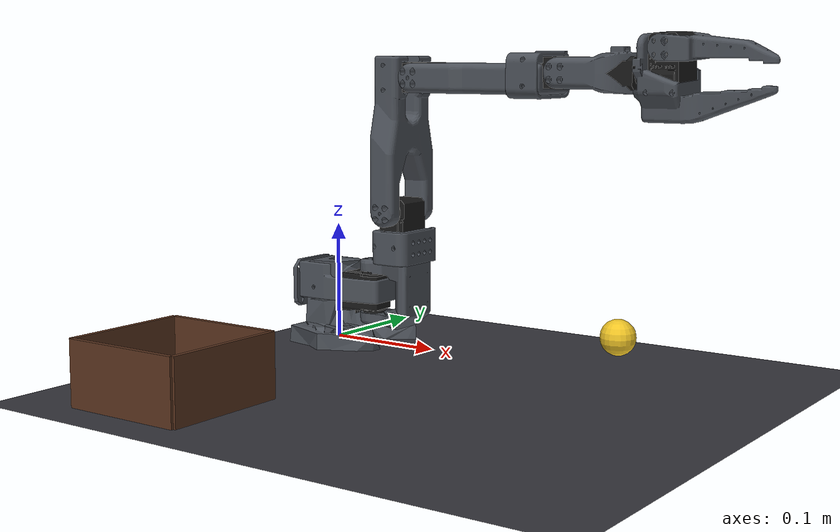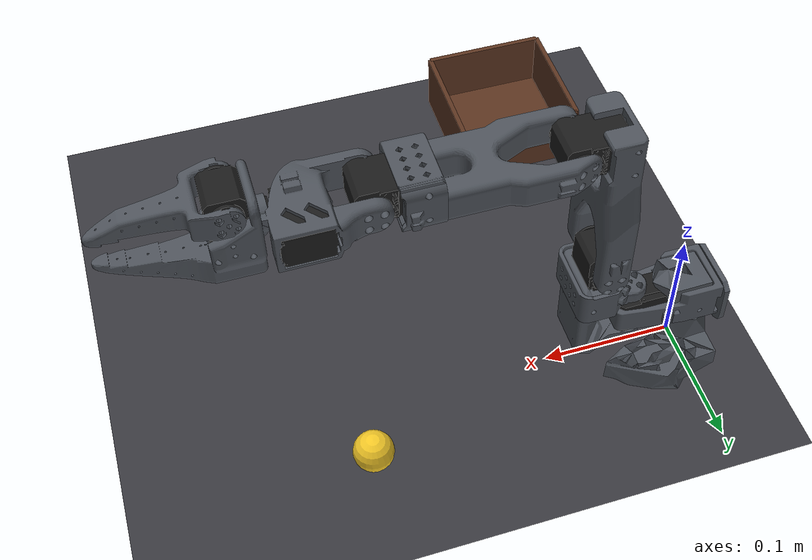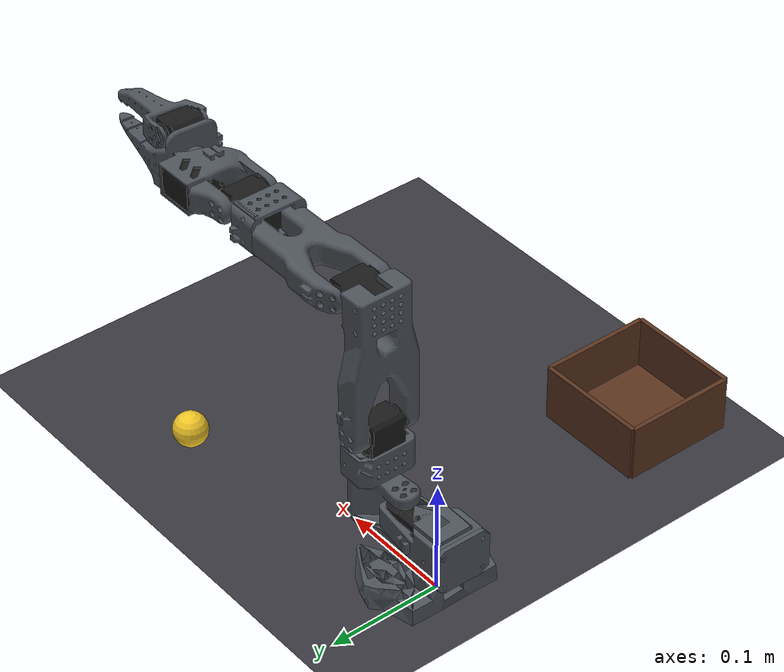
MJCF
<mujoco model="tek5_pick_and_place">
    <include file="so101_tek5.xml" />

    <visual>
        <headlight diffuse="0.6 0.6 0.6" ambient="0.3 0.3 0.3" specular="0 0 0" />
        <global azimuth="160" elevation="-20" offwidth="1280" offheight="720" />
    </visual>

    <asset>
        <texture type="2d" name="groundplane" builtin="checker" mark="edge"
            rgb1="0.25 0.25 0.28" rgb2="0.18 0.18 0.20" markrgb="0.6 0.6 0.6"
            width="300" height="300" />
        <material name="groundplane" texture="groundplane" texuniform="true"
            texrepeat="5 5" reflectance="0.1" />
        <material name="gold" rgba="0.95 0.78 0.15 1" specular="0.8" shininess="0.9" />
        <material name="box_mat" rgba="0.35 0.20 0.12 1" />
    </asset>

    <worldbody>
        <light pos="0 0 2.5" dir="0 0 -1" directional="true" />
        <light pos="0.5 0.5 1.5" dir="-0.3 -0.3 -1" diffuse="0.4 0.4 0.4" />
        <geom name="floor" size="0 0 0.05" pos="0 0 0" type="plane" material="groundplane" />

        <!-- Boule dorée : corps libre, position randomisable via qpos -->
        <body name="gold_ball" pos="0.25 0.05 0.02">
            <freejoint name="gold_ball_free" />
            <geom name="gold_ball_geom" type="sphere" size="0.015" material="gold"
                density="300" friction="1.0 0.005 0.0001" />
        </body>

        <!-- Boîte de dépôt -->
        <body name="drop_box" pos="0.05 -0.25 0.0">
            <geom type="box" size="0.05 0.05 0.002" pos="0 0 0.002" material="box_mat" />
            <geom type="box" size="0.05 0.002 0.025" pos="0 0.05 0.025" material="box_mat" />
            <geom type="box" size="0.05 0.002 0.025" pos="0 -0.05 0.025" material="box_mat" />
            <geom type="box" size="0.002 0.05 0.025" pos="0.05 0 0.025" material="box_mat" />
            <geom type="box" size="0.002 0.05 0.025" pos="-0.05 0 0.025" material="box_mat" />
        </body>

        <!-- Caméra externe fixe (eye-to-hand), pose CONNUE : c'est la TF caméra->monde
             fournie aux étudiants. Regarde la zone de travail depuis le haut/côté. -->
        <camera name="external_cam" pos="0.45 0.45 0.55" xyaxes="-0.707 0.707 0 -0.354 -0.354 0.866"
            fovy="52" />
    </worldbody>
</mujoco>

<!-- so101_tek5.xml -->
<!-- Generated using onshape-to-robot -->
<!-- Onshape https://cad.onshape.com/documents/7715cc284bb430fe6dab4ffd/w/4fd0791b683777b02f8d975a/e/826c553ede3b7592eb9ca800 -->
<mujoco model="so101_new_calib">
  <compiler angle="radian" meshdir="assets" autolimits="true"/>
  <default>
    <default class="so101_new_calib">
      <joint damping="1" frictionloss="0.1" armature="0.005"/>
      <position kp="50"/>
      <default class="visual">
        <geom type="mesh" contype="0" conaffinity="0" group="2"/>
      </default>
      <default class="collision">
        <geom group="3"/>
      </default>
    </default>
  </default>
  <!-- Additional joints_properties.xml -->
  <default>
    <default class="sts3215">
      <geom contype="0" conaffinity="0"/>
      <joint damping="0.60" frictionloss="0.052" armature="0.028"/>
      <position kp="998.22" kv="2.731" forcerange="-2.94 2.94"/>
    </default>
    <default class="backlash">
      <!-- +/- 0.5° of backlash -->
      <joint damping="0.01" frictionloss="0" armature="0.01" limited="true" range="-0.008726646259971648 0.008726646259971648"/>
    </default>
  </default>
  <worldbody>
    <!-- Link base -->
    <body name="base" pos="0 0 0" quat="1 0 0 0" childclass="so101_new_calib">
      <inertial pos="0.0137179 -5.19711e-05 0.0334843" mass="0.147" fullinertia="0.000114686 0.000136117 0.000130364 -4.59787e-07 4.97151e-06 9.75275e-08"/>
      <!-- Part base_motor_holder_so101_v1 -->
      <geom type="mesh" class="visual" pos="-0.00636471 -9.94414e-05 -0.0024" quat="0.5 0.5 0.5 0.5" mesh="base_motor_holder_so101_v1" material="base_motor_holder_so101_v1_material"/>
      <!-- Part base_so101_v2 -->
      <geom type="mesh" class="visual" pos="-0.00636471 -8.97657e-09 -0.0024" quat="0.5 0.5 0.5 0.5" mesh="base_so101_v2" material="base_so101_v2_material"/>
      <!-- Part sts3215_03a_v1 -->
      <geom type="mesh" class="visual" pos="0.0263353 -8.97657e-09 0.0437" quat="1 -2.85511e-16 -9.64433e-17 6.12908e-16" mesh="sts3215_03a_v1" material="sts3215_03a_v1_material"/>
      <!-- Part waveshare_mounting_plate_so101_v2 -->
      <geom type="mesh" class="visual" pos="-0.0309827 -0.000199441 0.0474" quat="0.5 0.5 0.5 0.5" mesh="waveshare_mounting_plate_so101_v2" material="waveshare_mounting_plate_so101_v2_material"/>
      <!-- Frame baseframe -->
      <site group="3" name="baseframe" pos="8.67362e-19 9.55596e-18 3.46945e-18" quat="1 -8.17396e-19 3.78392e-17 2.22045e-16"/>
      <!-- Link shoulder -->
      <body name="shoulder" pos="0.0388353 -8.97657e-09 0.0624" quat="3.56167e-16 1.22818e-15 -1 -4.14635e-16">
        <!-- Joint from base to shoulder -->
        <joint axis="0 0 1" name="shoulder_pan" type="hinge" range="-1.9198621771937616 1.9198621771937634" class="sts3215"/>
        <inertial pos="-0.0307604 -1.66727e-05 -0.0252713" mass="0.100006" fullinertia="8.3759e-05 8.10403e-05 2.39783e-05 7.55525e-08 -1.16342e-06 1.54663e-07"/>
        <!-- Part sts3215_03a_v1_2 -->
        <geom type="mesh" class="visual" pos="-0.0303992 0.000422241 -0.0417" quat="0.5 0.5 0.5 -0.5" mesh="sts3215_03a_v1" material="sts3215_03a_v1_material"/>
        <geom type="mesh" class="collision" pos="-0.0303992 0.000422241 -0.0417" quat="0.5 0.5 0.5 -0.5" mesh="sts3215_03a_v1" material="sts3215_03a_v1_material"/>
        <!-- Part motor_holder_so101_base_v1 -->
        <geom type="mesh" class="visual" pos="-0.0675992 -0.000177759 0.0158499" quat="0.5 0.5 -0.5 0.5" mesh="motor_holder_so101_base_v1" material="motor_holder_so101_base_v1_material"/>
        <geom type="mesh" class="collision" pos="-0.0675992 -0.000177759 0.0158499" quat="0.5 0.5 -0.5 0.5" mesh="motor_holder_so101_base_v1" material="motor_holder_so101_base_v1_material"/>
        <!-- Part rotation_pitch_so101_v1 -->
        <geom type="mesh" class="visual" pos="0.0122008 2.22413e-05 0.0464" quat="0.707107 -0.707107 -0 8.3163e-34" mesh="rotation_pitch_so101_v1" material="rotation_pitch_so101_v1_material"/>
        <geom type="mesh" class="collision" pos="0.0122008 2.22413e-05 0.0464" quat="0.707107 -0.707107 -0 8.3163e-34" mesh="rotation_pitch_so101_v1" material="rotation_pitch_so101_v1_material"/>
        <!-- Link upper_arm -->
        <body name="upper_arm" pos="-0.0303992 -0.0182778 -0.0542" quat="0.5 -0.5 -0.5 -0.5">
          <!-- Joint from shoulder to upper_arm -->
          <joint axis="0 0 1" name="shoulder_lift" type="hinge" range="-1.7453292519943224 1.7453292519943366" class="sts3215"/>
          <inertial pos="-0.0898471 -0.00838224 0.0184089" mass="0.103" fullinertia="4.08002e-05 0.000147318 0.000142487 -1.97819e-05 -4.03016e-08 8.97326e-09"/>
          <!-- Part sts3215_03a_v1_3 -->
          <geom type="mesh" class="visual" pos="-0.11257 -0.0155 0.0187" quat="4.56308e-16 -0.707107 0.707107 -1.37383e-16" mesh="sts3215_03a_v1" material="sts3215_03a_v1_material"/>
          <geom type="mesh" class="collision" pos="-0.11257 -0.0155 0.0187" quat="4.56308e-16 -0.707107 0.707107 -1.37383e-16" mesh="sts3215_03a_v1" material="sts3215_03a_v1_material"/>
          <!-- Part upper_arm_so101_v1 -->
          <geom type="mesh" class="visual" pos="-0.065085 0.012 0.0182" quat="0 1 0 0" mesh="upper_arm_so101_v1" material="upper_arm_so101_v1_material"/>
          <geom type="mesh" class="collision" pos="-0.065085 0.012 0.0182" quat="0 1 0 0" mesh="upper_arm_so101_v1" material="upper_arm_so101_v1_material"/>
          <!-- Link lower_arm -->
          <body name="lower_arm" pos="-0.11257 -0.028 1.73763e-16" quat="0.707107 -5.98613e-17 -2.58051e-17 0.707107">
            <!-- Joint from upper_arm to lower_arm -->
            <!-- Note: 5-degree calibration offset applied to joint range -->
            <joint axis="0 0 1" name="elbow_flex" type="hinge" range="-1.69 1.69" class="sts3215"/>
            <inertial pos="-0.0980701 0.00324376 0.0182831" mass="0.104" fullinertia="2.87438e-05 0.000159844 0.00014529 7.41152e-06 1.26409e-06 -4.90188e-08"/>
            <!-- Part under_arm_so101_v1 -->
            <geom type="mesh" class="visual" pos="-0.0648499 -0.032 0.0182" quat="0 1 0 0" mesh="under_arm_so101_v1" material="under_arm_so101_v1_material"/>
            <geom type="mesh" class="collision" pos="-0.0648499 -0.032 0.0182" quat="0 1 0 0" mesh="under_arm_so101_v1" material="under_arm_so101_v1_material"/>
            <!-- Part motor_holder_so101_wrist_v1 -->
            <geom type="mesh" class="visual" pos="-0.0648499 -0.032 0.018" quat="3.92687e-16 -1 -1.9186e-15 -6.38378e-16" mesh="motor_holder_so101_wrist_v1" material="motor_holder_so101_wrist_v1_material"/>
            <geom type="mesh" class="collision" pos="-0.0648499 -0.032 0.018" quat="3.92687e-16 -1 -1.9186e-15 -6.38378e-16" mesh="motor_holder_so101_wrist_v1" material="motor_holder_so101_wrist_v1_material"/>
            <!-- Part sts3215_03a_v1_4 -->
            <geom type="mesh" class="visual" pos="-0.1224 0.0052 0.0187" quat="7.21645e-16 1.56949e-15 1 -3.33067e-16" mesh="sts3215_03a_v1" material="sts3215_03a_v1_material"/>
            <geom type="mesh" class="collision" pos="-0.1224 0.0052 0.0187" quat="7.21645e-16 1.56949e-15 1 -3.33067e-16" mesh="sts3215_03a_v1" material="sts3215_03a_v1_material"/>
            <!-- Link wrist -->
            <body name="wrist" pos="-0.1349 0.0052 3.62355e-17" quat="0.707107 9.58722e-16 -7.51313e-16 -0.707107">
              <!-- Joint from lower_arm to wrist -->
              <joint axis="0 0 1" name="wrist_flex" type="hinge" range="-1.6580628494556928 1.6580627293335335" class="sts3215"/>
              <inertial pos="-0.000103312 -0.0386143 0.0281156" mass="0.079" fullinertia="3.68263e-05 2.5391e-05 2.1e-05 1.7893e-08 -5.28128e-08 3.6412e-06"/>
              <!-- Part sts3215_03a_no_horn_v1 -->
              <geom type="mesh" class="visual" pos="8.32667e-17 -0.0424 0.0306" quat="0.5 0.5 0.5 -0.5" mesh="sts3215_03a_no_horn_v1" material="sts3215_03a_no_horn_v1_material"/>
              <geom type="mesh" class="collision" pos="8.32667e-17 -0.0424 0.0306" quat="0.5 0.5 0.5 -0.5" mesh="sts3215_03a_no_horn_v1" material="sts3215_03a_no_horn_v1_material"/>
              <!-- Part wrist_roll_pitch_so101_v2 -->
              <geom type="mesh" class="visual" pos="0 -0.028 0.0181" quat="0.5 -0.5 -0.5 -0.5" mesh="wrist_roll_pitch_so101_v2" material="wrist_roll_pitch_so101_v2_material"/>
              <geom type="mesh" class="collision" pos="0 -0.028 0.0181" quat="0.5 -0.5 -0.5 -0.5" mesh="wrist_roll_pitch_so101_v2" material="wrist_roll_pitch_so101_v2_material"/>
              <!-- Link gripper -->
              <body name="gripper" pos="5.55112e-17 -0.0611 0.0181" quat="0.0172091 -0.0172091 0.706897 0.706897">
                <!-- Joint from wrist to gripper -->
                <joint axis="0 0 1" name="wrist_roll" type="hinge" range="-2.7438472969992493 2.841206309382605" class="sts3215"/>
                <inertial pos="0.000213627 0.000245138 -0.025187" mass="0.087" fullinertia="2.75087e-05 4.33657e-05 3.45059e-05 -3.35241e-07 -5.7352e-06 -5.17847e-08"/>
                <!-- Part sts3215_03a_v1_5 -->
                <geom type="mesh" class="visual" pos="0.0077 0.0001 -0.0234" quat="0.707107 -0.707107 1.66015e-15 6.45094e-15" mesh="sts3215_03a_v1" material="sts3215_03a_v1_material"/>
                <geom type="mesh" class="collision" pos="0.0077 0.0001 -0.0234" quat="0.707107 -0.707107 1.66015e-15 6.45094e-15" mesh="sts3215_03a_v1" material="sts3215_03a_v1_material"/>
                <!-- Part wrist_roll_follower_so101_v1 -->
                <geom type="mesh" class="visual" pos="8.32667e-17 -0.000218214 0.000949706" quat="0 1 0 0" mesh="wrist_roll_follower_so101_v1" material="wrist_roll_follower_so101_v1_material"/>
                <geom type="mesh" class="collision" pos="8.32667e-17 -0.000218214 0.000949706" quat="0 1 0 0" mesh="wrist_roll_follower_so101_v1" material="wrist_roll_follower_so101_v1_material"/>
                <!-- Frame gripperframe -->
                <site group="3" name="gripperframe" pos="-0.0079 -0.000218121 -0.0981274" quat="0.707107 -0 0.707107 -2.37788e-17"/>
                <!-- Link moving_jaw_so101_v1 -->
                <body name="moving_jaw_so101_v1" pos="0.0202 0.0188 -0.0234" quat="0.707107 0.707107 -1.85362e-08 1.85362e-08">
                  <!-- Joint from gripper to moving_jaw_so101_v1 -->
                  <joint axis="0 0 1" name="gripper" type="hinge" range="-0.17453297762778586 1.7453291995659765" class="sts3215"/>
                  <inertial pos="-0.00157495 -0.0300244 0.0192755" mass="0.012" fullinertia="6.61427e-06 1.89032e-06 5.28738e-06 -3.19807e-07 -5.90717e-09 -1.09945e-07"/>
                  <!-- Part moving_jaw_so101_v1 -->
                  <geom type="mesh" class="visual" pos="-5.55112e-17 -5.55112e-17 0.0189" quat="1 -0 3.00524e-16 -2.00834e-17" mesh="moving_jaw_so101_v1" material="moving_jaw_so101_v1_material"/>
                  <geom type="mesh" class="collision" pos="-5.55112e-17 -5.55112e-17 0.0189" quat="1 -0 3.00524e-16 -2.00834e-17" mesh="moving_jaw_so101_v1" material="moving_jaw_so101_v1_material"/>
                </body>
              </body>
            </body>
          </body>
        </body>
      </body>
    </body>
  </worldbody>
  <asset>
    <mesh file="waveshare_mounting_plate_so101_v2.stl"/>
    <mesh file="sts3215_03a_v1.stl"/>
    <mesh file="motor_holder_so101_base_v1.stl"/>
    <mesh file="wrist_roll_follower_so101_v1.stl"/>
    <mesh file="moving_jaw_so101_v1.stl"/>
    <mesh file="base_motor_holder_so101_v1.stl"/>
    <mesh file="upper_arm_so101_v1.stl"/>
    <mesh file="wrist_roll_pitch_so101_v2.stl"/>
    <mesh file="under_arm_so101_v1.stl"/>
    <mesh file="rotation_pitch_so101_v1.stl"/>
    <mesh file="motor_holder_so101_wrist_v1.stl"/>
    <mesh file="sts3215_03a_no_horn_v1.stl"/>
    <mesh file="base_so101_v2.stl"/>
    <material name="base_motor_holder_so101_v1_material" rgba="0.30 0.32 0.35 1"/>
    <material name="base_so101_v2_material" rgba="0.30 0.32 0.35 1"/>
    <material name="sts3215_03a_v1_material" rgba="0.1 0.1 0.1 1"/>
    <material name="waveshare_mounting_plate_so101_v2_material" rgba="0.30 0.32 0.35 1"/>
    <material name="motor_holder_so101_base_v1_material" rgba="0.30 0.32 0.35 1"/>
    <material name="rotation_pitch_so101_v1_material" rgba="0.30 0.32 0.35 1"/>
    <material name="upper_arm_so101_v1_material" rgba="0.30 0.32 0.35 1"/>
    <material name="under_arm_so101_v1_material" rgba="0.30 0.32 0.35 1"/>
    <material name="motor_holder_so101_wrist_v1_material" rgba="0.30 0.32 0.35 1"/>
    <material name="sts3215_03a_no_horn_v1_material" rgba="0.1 0.1 0.1 1.0"/>
    <material name="wrist_roll_pitch_so101_v2_material" rgba="0.30 0.32 0.35 1"/>
    <material name="wrist_roll_follower_so101_v1_material" rgba="0.30 0.32 0.35 1"/>
    <material name="moving_jaw_so101_v1_material" rgba="0.30 0.32 0.35 1"/>
  </asset>
  <actuator>
    <position class="sts3215" name="shoulder_pan" joint="shoulder_pan" forcerange="-3.35 3.35" ctrlrange="-1.91986 1.91986"/>
    <position class="sts3215" name="shoulder_lift" joint="shoulder_lift" forcerange="-3.35 3.35" ctrlrange="-1.74533 1.74533"/>
    <position class="sts3215" name="elbow_flex" joint="elbow_flex" forcerange="-3.35 3.35" ctrlrange="-1.69 1.69"/>
    <position class="sts3215" name="wrist_flex" joint="wrist_flex" forcerange="-3.35 3.35" ctrlrange="-1.65806 1.65806"/>
    <position class="sts3215" name="wrist_roll" joint="wrist_roll" forcerange="-3.35 3.35" ctrlrange="-2.74385 2.84121"/>
    <position class="sts3215" name="gripper" joint="gripper" forcerange="-3.35 3.35" ctrlrange="-0.17453 1.74533"/>
  </actuator>
  <equality/>
</mujoco>
